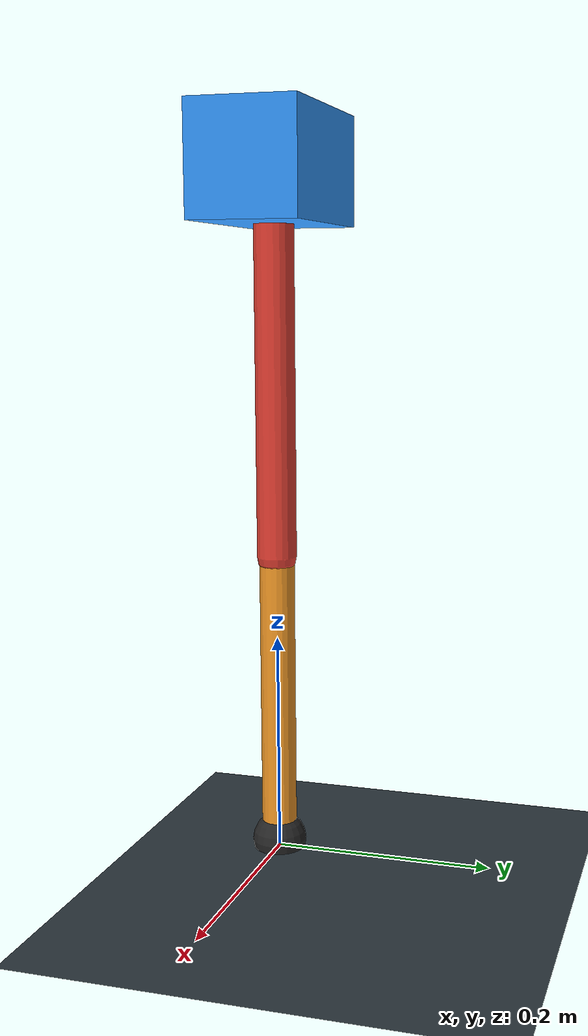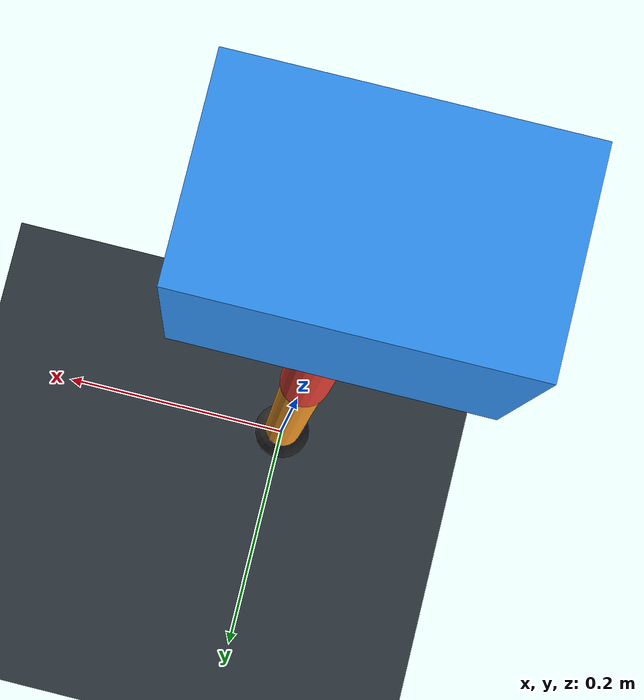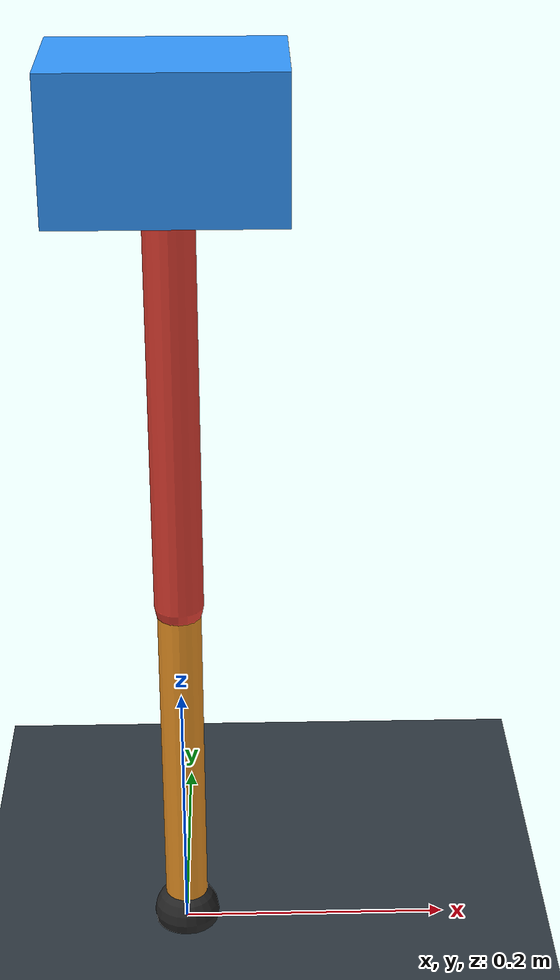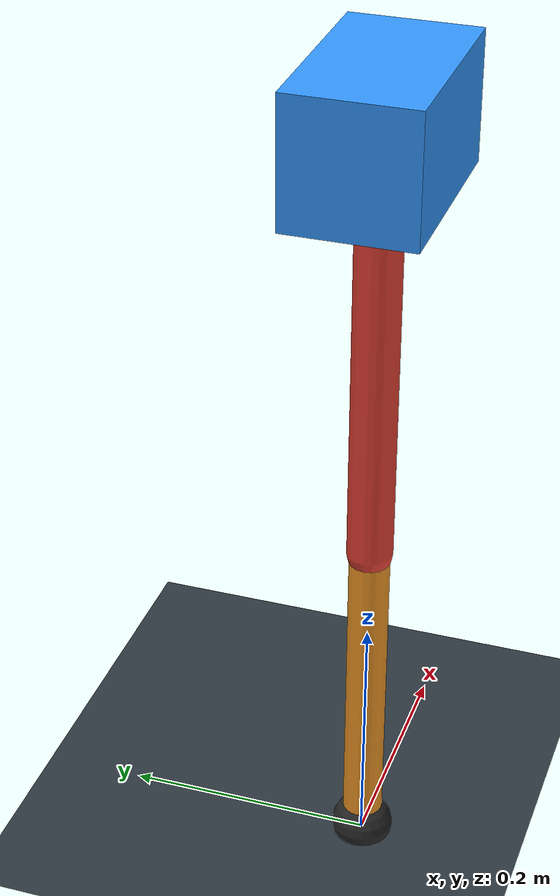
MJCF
<mujoco model="single_axis_two_bar">
  <compiler angle="radian" inertiafromgeom="true"/>
  <option timestep="0.001" integrator="implicitfast" gravity="0 0 -9.81"/>
  <default>
    <joint damping="0.08"/>
    <geom friction="1.2 0.01 0.0001" condim="3"/>
  </default>
  <worldbody>
    <geom name="floor" type="plane" size="5 5 0.1" rgba="0.18 0.22 0.25 1"/>
    <body name="carriage" pos="0 0 0.6251359723335662">
      <joint name="pole_slide" type="slide" axis="0 0 1"/>
      <geom name="payload" type="box" size="0.08 0.05 0.05" mass="1.807747220099012" rgba="0.2 0.6 1 1"/>
      <body name="thigh" pos="0 0 0">
        <joint name="hip" type="hinge" axis="0 1 0"/>
        <geom name="thigh_link" type="capsule" fromto="0 0 0 0 0 -0.3486160664526112" size="0.018" mass="0.24839355390237483" rgba="0.9 0.25 0.2 1"/>
        <body name="shank" pos="0 0 -0.3486160664526112">
          <joint name="knee" type="hinge" axis="0 1 0"/>
          <geom name="shank_link" type="capsule" fromto="0 0 0 0 0 -0.270080812241787" size="0.016" mass="0.19243614752533733" rgba="0.95 0.6 0.15 1"/>
          <geom name="foot" type="sphere" pos="0 0 -0.270080812241787" size="0.025" mass="0.03" rgba="0.15 0.15 0.15 1"/>
          <site name="toe" pos="0 0 -0.270080812241787" size="0.008"/>
        </body>
      </body>
    </body>
  </worldbody>
  <actuator>
    <motor name="hip_motor" joint="hip" ctrlrange="-13.392154692864052 13.392154692864052"/>
    <motor name="knee_motor" joint="knee" ctrlrange="-46.75544793243115 46.75544793243115"/>
  </actuator>
</mujoco>
